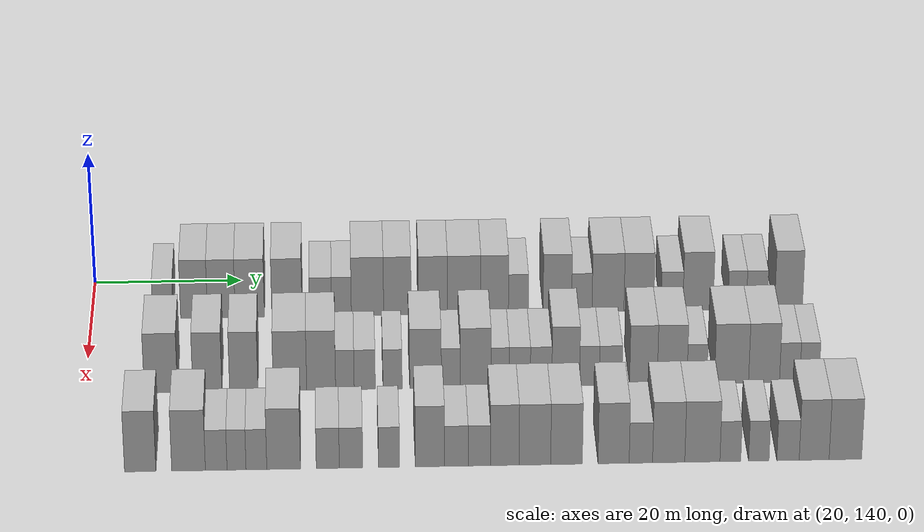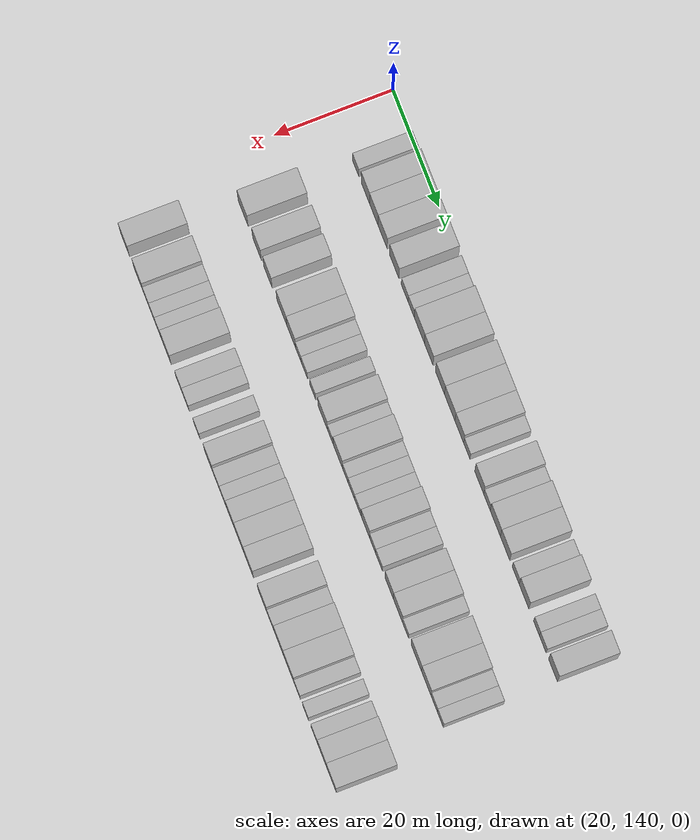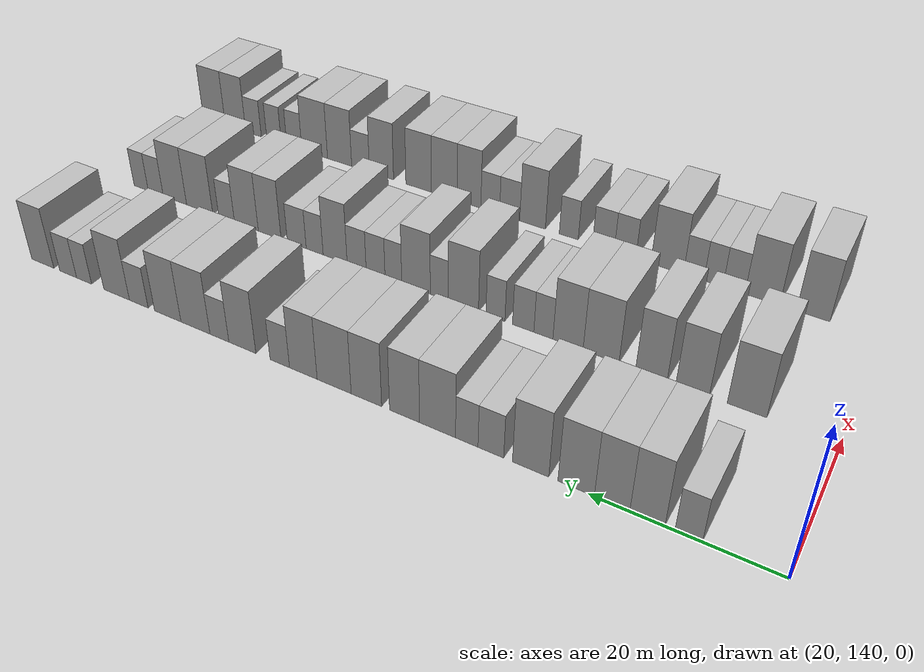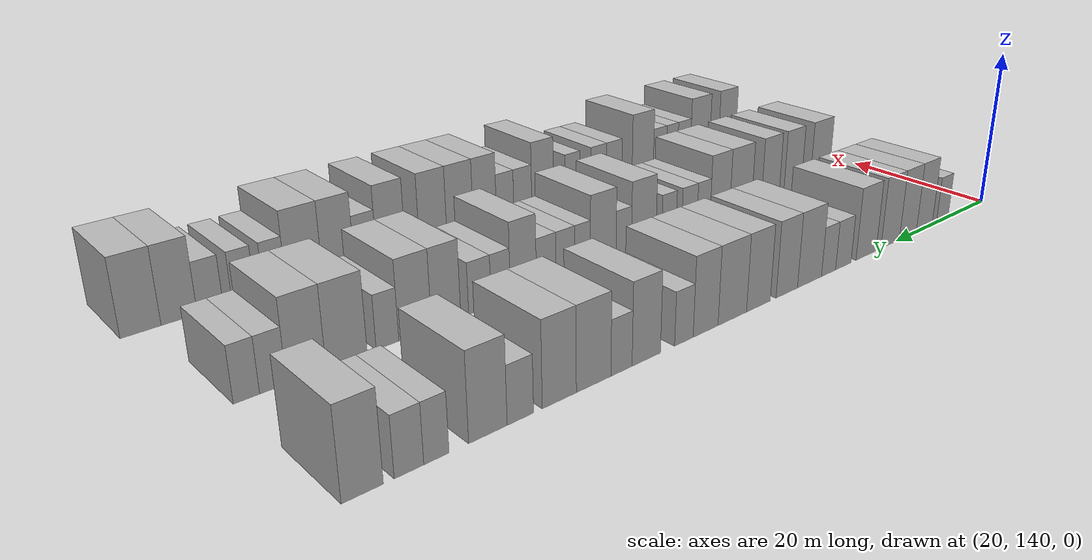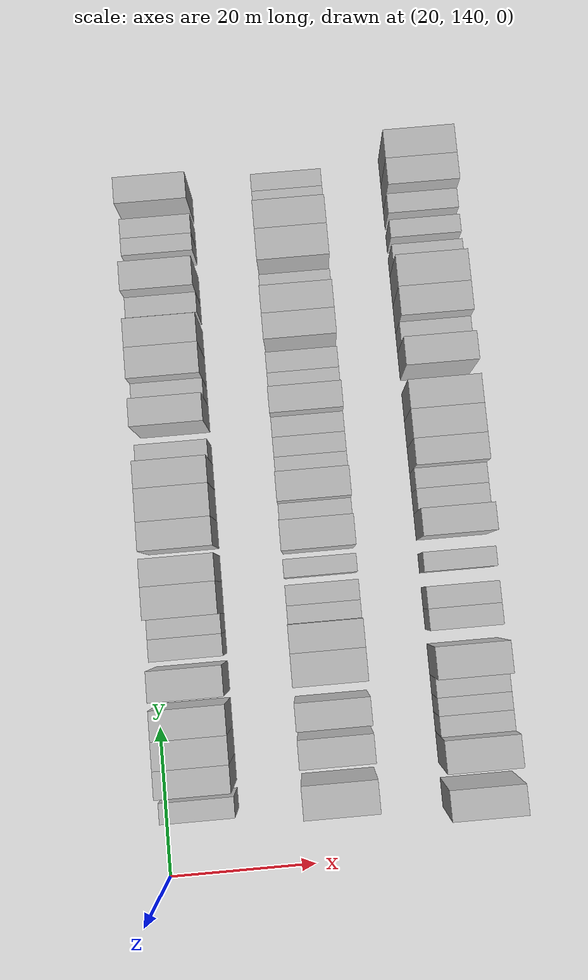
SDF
<sdf version="1.6">
 <world name="default">
  <model name="building_97">
   <static>1</static>
   <pose>25.0000 149.6220 0 0.000000 0.000000 0.000000</pose>
   <link name="link">
    <pose>0 0 3.00 0 0 0</pose>
    <collision name="collision"><geometry><box><size>10.0000 2.7482 6.0000</size></box></geometry></collision>
    <visual name="visual">
     <cast_shadows>0</cast_shadows>
     <geometry><box><size>10.0000 2.7482 6.0000</size></box></geometry>
     <material>
      <script>
       <uri>model://HANNAS_wall/materials/scripts</uri>
       <uri>model://HANNAS_wall/materials/textures</uri>
       <name>vrc/HANNAS_wall</name>
      </script>
     </material>
    </visual>
   </link>
  </model>
  <model name="building_98">
   <static>1</static>
   <pose>25.0000 153.8013 0 0.000000 0.000000 0.000000</pose>
   <link name="link">
    <pose>0 0 4.50 0 0 0</pose>
    <collision name="collision"><geometry><box><size>10.0000 3.6104 9.0000</size></box></geometry></collision>
    <visual name="visual">
     <cast_shadows>0</cast_shadows>
     <geometry><box><size>10.0000 3.6104 9.0000</size></box></geometry>
     <material>
      <script>
       <uri>model://HANNAS_wall/materials/scripts</uri>
       <uri>model://HANNAS_wall/materials/textures</uri>
       <name>vrc/HANNAS_wall</name>
      </script>
     </material>
    </visual>
   </link>
  </model>
  <model name="building_99">
   <static>1</static>
   <pose>25.0000 157.4761 0 0.000000 0.000000 0.000000</pose>
   <link name="link">
    <pose>0 0 4.50 0 0 0</pose>
    <collision name="collision"><geometry><box><size>10.0000 3.7392 9.0000</size></box></geometry></collision>
    <visual name="visual">
     <cast_shadows>0</cast_shadows>
     <geometry><box><size>10.0000 3.7392 9.0000</size></box></geometry>
     <material>
      <script>
       <uri>model://HANNAS_wall/materials/scripts</uri>
       <uri>model://HANNAS_wall/materials/textures</uri>
       <name>vrc/HANNAS_wall</name>
      </script>
     </material>
    </visual>
   </link>
  </model>
  <model name="building_100">
   <static>1</static>
   <pose>25.0000 161.3180 0 0.000000 0.000000 0.000000</pose>
   <link name="link">
    <pose>0 0 4.50 0 0 0</pose>
    <collision name="collision"><geometry><box><size>10.0000 3.9446 9.0000</size></box></geometry></collision>
    <visual name="visual">
     <cast_shadows>0</cast_shadows>
     <geometry><box><size>10.0000 3.9446 9.0000</size></box></geometry>
     <material>
      <script>
       <uri>model://HANNAS_wall/materials/scripts</uri>
       <uri>model://HANNAS_wall/materials/textures</uri>
       <name>vrc/HANNAS_wall</name>
      </script>
     </material>
    </visual>
   </link>
  </model>
  <model name="building_101">
   <static>1</static>
   <pose>25.0000 166.3314 0 0.000000 0.000000 0.000000</pose>
   <link name="link">
    <pose>0 0 4.50 0 0 0</pose>
    <collision name="collision"><geometry><box><size>10.0000 4.0823 9.0000</size></box></geometry></collision>
    <visual name="visual">
     <cast_shadows>0</cast_shadows>
     <geometry><box><size>10.0000 4.0823 9.0000</size></box></geometry>
     <material>
      <script>
       <uri>model://HANNAS_wall/materials/scripts</uri>
       <uri>model://HANNAS_wall/materials/textures</uri>
       <name>vrc/HANNAS_wall</name>
      </script>
     </material>
    </visual>
   </link>
  </model>
  <model name="building_102">
   <static>1</static>
   <pose>25.0000 170.8628 0 0.000000 0.000000 0.000000</pose>
   <link name="link">
    <pose>0 0 3.00 0 0 0</pose>
    <collision name="collision"><geometry><box><size>10.0000 2.9804 6.0000</size></box></geometry></collision>
    <visual name="visual">
     <cast_shadows>0</cast_shadows>
     <geometry><box><size>10.0000 2.9804 6.0000</size></box></geometry>
     <material>
      <script>
       <uri>model://HANNAS_wall/materials/scripts</uri>
       <uri>model://HANNAS_wall/materials/textures</uri>
       <name>vrc/HANNAS_wall</name>
      </script>
     </material>
    </visual>
   </link>
  </model>
  <model name="building_103">
   <static>1</static>
   <pose>25.0000 173.6790 0 0.000000 0.000000 0.000000</pose>
   <link name="link">
    <pose>0 0 3.00 0 0 0</pose>
    <collision name="collision"><geometry><box><size>10.0000 2.6522 6.0000</size></box></geometry></collision>
    <visual name="visual">
     <cast_shadows>0</cast_shadows>
     <geometry><box><size>10.0000 2.6522 6.0000</size></box></geometry>
     <material>
      <script>
       <uri>model://HANNAS_wall/materials/scripts</uri>
       <uri>model://HANNAS_wall/materials/textures</uri>
       <name>vrc/HANNAS_wall</name>
      </script>
     </material>
    </visual>
   </link>
  </model>
  <model name="building_104">
   <static>1</static>
   <pose>25.0000 177.1839 0 0.000000 0.000000 0.000000</pose>
   <link name="link">
    <pose>0 0 4.50 0 0 0</pose>
    <collision name="collision"><geometry><box><size>10.0000 4.3577 9.0000</size></box></geometry></collision>
    <visual name="visual">
     <cast_shadows>0</cast_shadows>
     <geometry><box><size>10.0000 4.3577 9.0000</size></box></geometry>
     <material>
      <script>
       <uri>model://HANNAS_wall/materials/scripts</uri>
       <uri>model://HANNAS_wall/materials/textures</uri>
       <name>vrc/HANNAS_wall</name>
      </script>
     </material>
    </visual>
   </link>
  </model>
  <model name="building_105">
   <static>1</static>
   <pose>25.0000 181.2200 0 0.000000 0.000000 0.000000</pose>
   <link name="link">
    <pose>0 0 4.50 0 0 0</pose>
    <collision name="collision"><geometry><box><size>10.0000 3.7145 9.0000</size></box></geometry></collision>
    <visual name="visual">
     <cast_shadows>0</cast_shadows>
     <geometry><box><size>10.0000 3.7145 9.0000</size></box></geometry>
     <material>
      <script>
       <uri>model://HANNAS_wall/materials/scripts</uri>
       <uri>model://HANNAS_wall/materials/textures</uri>
       <name>vrc/HANNAS_wall</name>
      </script>
     </material>
    </visual>
   </link>
  </model>
  <model name="building_106">
   <static>1</static>
   <pose>25.0000 186.0313 0 0.000000 0.000000 0.000000</pose>
   <link name="link">
    <pose>0 0 4.50 0 0 0</pose>
    <collision name="collision"><geometry><box><size>10.0000 3.9080 9.0000</size></box></geometry></collision>
    <visual name="visual">
     <cast_shadows>0</cast_shadows>
     <geometry><box><size>10.0000 3.9080 9.0000</size></box></geometry>
     <material>
      <script>
       <uri>model://HANNAS_wall/materials/scripts</uri>
       <uri>model://HANNAS_wall/materials/textures</uri>
       <name>vrc/HANNAS_wall</name>
      </script>
     </material>
    </visual>
   </link>
  </model>
  <model name="building_107">
   <static>1</static>
   <pose>25.0000 190.2324 0 0.000000 0.000000 0.000000</pose>
   <link name="link">
    <pose>0 0 4.50 0 0 0</pose>
    <collision name="collision"><geometry><box><size>10.0000 4.4941 9.0000</size></box></geometry></collision>
    <visual name="visual">
     <cast_shadows>0</cast_shadows>
     <geometry><box><size>10.0000 4.4941 9.0000</size></box></geometry>
     <material>
      <script>
       <uri>model://HANNAS_wall/materials/scripts</uri>
       <uri>model://HANNAS_wall/materials/textures</uri>
       <name>vrc/HANNAS_wall</name>
      </script>
     </material>
    </visual>
   </link>
  </model>
  <model name="building_108">
   <static>1</static>
   <pose>25.0000 194.3490 0 0.000000 0.000000 0.000000</pose>
   <link name="link">
    <pose>0 0 4.50 0 0 0</pose>
    <collision name="collision"><geometry><box><size>10.0000 3.7392 9.0000</size></box></geometry></collision>
    <visual name="visual">
     <cast_shadows>0</cast_shadows>
     <geometry><box><size>10.0000 3.7392 9.0000</size></box></geometry>
     <material>
      <script>
       <uri>model://HANNAS_wall/materials/scripts</uri>
       <uri>model://HANNAS_wall/materials/textures</uri>
       <name>vrc/HANNAS_wall</name>
      </script>
     </material>
    </visual>
   </link>
  </model>
  <model name="building_109">
   <static>1</static>
   <pose>25.0000 197.5638 0 0.000000 0.000000 0.000000</pose>
   <link name="link">
    <pose>0 0 3.00 0 0 0</pose>
    <collision name="collision"><geometry><box><size>10.0000 2.6904 6.0000</size></box></geometry></collision>
    <visual name="visual">
     <cast_shadows>0</cast_shadows>
     <geometry><box><size>10.0000 2.6904 6.0000</size></box></geometry>
     <material>
      <script>
       <uri>model://HANNAS_wall/materials/scripts</uri>
       <uri>model://HANNAS_wall/materials/textures</uri>
       <name>vrc/HANNAS_wall</name>
      </script>
     </material>
    </visual>
   </link>
  </model>
  <model name="building_110">
   <static>1</static>
   <pose>25.0000 202.8385 0 0.000000 0.000000 0.000000</pose>
   <link name="link">
    <pose>0 0 4.50 0 0 0</pose>
    <collision name="collision"><geometry><box><size>10.0000 3.8591 9.0000</size></box></geometry></collision>
    <visual name="visual">
     <cast_shadows>0</cast_shadows>
     <geometry><box><size>10.0000 3.8591 9.0000</size></box></geometry>
     <material>
      <script>
       <uri>model://HANNAS_wall/materials/scripts</uri>
       <uri>model://HANNAS_wall/materials/textures</uri>
       <name>vrc/HANNAS_wall</name>
      </script>
     </material>
    </visual>
   </link>
  </model>
  <model name="building_111">
   <static>1</static>
   <pose>25.0000 206.1472 0 0.000000 0.000000 0.000000</pose>
   <link name="link">
    <pose>0 0 3.00 0 0 0</pose>
    <collision name="collision"><geometry><box><size>10.0000 2.7583 6.0000</size></box></geometry></collision>
    <visual name="visual">
     <cast_shadows>0</cast_shadows>
     <geometry><box><size>10.0000 2.7583 6.0000</size></box></geometry>
     <material>
      <script>
       <uri>model://HANNAS_wall/materials/scripts</uri>
       <uri>model://HANNAS_wall/materials/textures</uri>
       <name>vrc/HANNAS_wall</name>
      </script>
     </material>
    </visual>
   </link>
  </model>
  <model name="building_112">
   <static>1</static>
   <pose>25.0000 209.6910 0 0.000000 0.000000 0.000000</pose>
   <link name="link">
    <pose>0 0 4.50 0 0 0</pose>
    <collision name="collision"><geometry><box><size>10.0000 4.3291 9.0000</size></box></geometry></collision>
    <visual name="visual">
     <cast_shadows>0</cast_shadows>
     <geometry><box><size>10.0000 4.3291 9.0000</size></box></geometry>
     <material>
      <script>
       <uri>model://HANNAS_wall/materials/scripts</uri>
       <uri>model://HANNAS_wall/materials/textures</uri>
       <name>vrc/HANNAS_wall</name>
      </script>
     </material>
    </visual>
   </link>
  </model>
  <model name="building_113">
   <static>1</static>
   <pose>25.0000 213.8749 0 0.000000 0.000000 0.000000</pose>
   <link name="link">
    <pose>0 0 4.50 0 0 0</pose>
    <collision name="collision"><geometry><box><size>10.0000 4.0388 9.0000</size></box></geometry></collision>
    <visual name="visual">
     <cast_shadows>0</cast_shadows>
     <geometry><box><size>10.0000 4.0388 9.0000</size></box></geometry>
     <material>
      <script>
       <uri>model://HANNAS_wall/materials/scripts</uri>
       <uri>model://HANNAS_wall/materials/textures</uri>
       <name>vrc/HANNAS_wall</name>
      </script>
     </material>
    </visual>
   </link>
  </model>
  <model name="building_114">
   <static>1</static>
   <pose>25.0000 218.3650 0 0.000000 0.000000 0.000000</pose>
   <link name="link">
    <pose>0 0 3.00 0 0 0</pose>
    <collision name="collision"><geometry><box><size>10.0000 2.9414 6.0000</size></box></geometry></collision>
    <visual name="visual">
     <cast_shadows>0</cast_shadows>
     <geometry><box><size>10.0000 2.9414 6.0000</size></box></geometry>
     <material>
      <script>
       <uri>model://HANNAS_wall/materials/scripts</uri>
       <uri>model://HANNAS_wall/materials/textures</uri>
       <name>vrc/HANNAS_wall</name>
      </script>
     </material>
    </visual>
   </link>
  </model>
  <model name="building_115">
   <static>1</static>
   <pose>25.0000 221.8903 0 0.000000 0.000000 0.000000</pose>
   <link name="link">
    <pose>0 0 4.50 0 0 0</pose>
    <collision name="collision"><geometry><box><size>10.0000 4.1090 9.0000</size></box></geometry></collision>
    <visual name="visual">
     <cast_shadows>0</cast_shadows>
     <geometry><box><size>10.0000 4.1090 9.0000</size></box></geometry>
     <material>
      <script>
       <uri>model://HANNAS_wall/materials/scripts</uri>
       <uri>model://HANNAS_wall/materials/textures</uri>
       <name>vrc/HANNAS_wall</name>
      </script>
     </material>
    </visual>
   </link>
  </model>
  <model name="building_116">
   <static>1</static>
   <pose>25.0000 227.1944 0 0.000000 0.000000 0.000000</pose>
   <link name="link">
    <pose>0 0 3.00 0 0 0</pose>
    <collision name="collision"><geometry><box><size>10.0000 2.4991 6.0000</size></box></geometry></collision>
    <visual name="visual">
     <cast_shadows>0</cast_shadows>
     <geometry><box><size>10.0000 2.4991 6.0000</size></box></geometry>
     <material>
      <script>
       <uri>model://HANNAS_wall/materials/scripts</uri>
       <uri>model://HANNAS_wall/materials/textures</uri>
       <name>vrc/HANNAS_wall</name>
      </script>
     </material>
    </visual>
   </link>
  </model>
  <model name="building_117">
   <static>1</static>
   <pose>25.0000 229.8580 0 0.000000 0.000000 0.000000</pose>
   <link name="link">
    <pose>0 0 3.00 0 0 0</pose>
    <collision name="collision"><geometry><box><size>10.0000 2.8282 6.0000</size></box></geometry></collision>
    <visual name="visual">
     <cast_shadows>0</cast_shadows>
     <geometry><box><size>10.0000 2.8282 6.0000</size></box></geometry>
     <material>
      <script>
       <uri>model://HANNAS_wall/materials/scripts</uri>
       <uri>model://HANNAS_wall/materials/textures</uri>
       <name>vrc/HANNAS_wall</name>
      </script>
     </material>
    </visual>
   </link>
  </model>
  <model name="building_118">
   <static>1</static>
   <pose>25.0000 234.1640 0 0.000000 0.000000 0.000000</pose>
   <link name="link">
    <pose>0 0 4.50 0 0 0</pose>
    <collision name="collision"><geometry><box><size>10.0000 3.7837 9.0000</size></box></geometry></collision>
    <visual name="visual">
     <cast_shadows>0</cast_shadows>
     <geometry><box><size>10.0000 3.7837 9.0000</size></box></geometry>
     <material>
      <script>
       <uri>model://HANNAS_wall/materials/scripts</uri>
       <uri>model://HANNAS_wall/materials/textures</uri>
       <name>vrc/HANNAS_wall</name>
      </script>
     </material>
    </visual>
   </link>
  </model>
  <model name="building_201">
   <static>1</static>
   <pose>44.0000 149.9380 0 0.000000 0.000000 0.000000</pose>
   <link name="link">
    <pose>0 0 4.50 0 0 0</pose>
    <collision name="collision"><geometry><box><size>10.0000 4.3450 9.0000</size></box></geometry></collision>
    <visual name="visual">
     <cast_shadows>0</cast_shadows>
     <geometry><box><size>10.0000 4.3450 9.0000</size></box></geometry>
     <material>
      <script>
       <uri>model://HANNAS_wall/materials/scripts</uri>
       <uri>model://HANNAS_wall/materials/textures</uri>
       <name>vrc/HANNAS_wall</name>
      </script>
     </material>
    </visual>
   </link>
  </model>
  <model name="building_202">
   <static>1</static>
   <pose>44.0000 156.0164 0 0.000000 0.000000 0.000000</pose>
   <link name="link">
    <pose>0 0 4.50 0 0 0</pose>
    <collision name="collision"><geometry><box><size>10.0000 3.8118 9.0000</size></box></geometry></collision>
    <visual name="visual">
     <cast_shadows>0</cast_shadows>
     <geometry><box><size>10.0000 3.8118 9.0000</size></box></geometry>
     <material>
      <script>
       <uri>model://HANNAS_wall/materials/scripts</uri>
       <uri>model://HANNAS_wall/materials/textures</uri>
       <name>vrc/HANNAS_wall</name>
      </script>
     </material>
    </visual>
   </link>
  </model>
  <model name="building_203">
   <static>1</static>
   <pose>44.0000 160.7750 0 0.000000 0.000000 0.000000</pose>
   <link name="link">
    <pose>0 0 4.50 0 0 0</pose>
    <collision name="collision"><geometry><box><size>10.0000 3.7052 9.0000</size></box></geometry></collision>
    <visual name="visual">
     <cast_shadows>0</cast_shadows>
     <geometry><box><size>10.0000 3.7052 9.0000</size></box></geometry>
     <material>
      <script>
       <uri>model://HANNAS_wall/materials/scripts</uri>
       <uri>model://HANNAS_wall/materials/textures</uri>
       <name>vrc/HANNAS_wall</name>
      </script>
     </material>
    </visual>
   </link>
  </model>
  <model name="building_204">
   <static>1</static>
   <pose>44.0000 166.8177 0 0.000000 0.000000 0.000000</pose>
   <link name="link">
    <pose>0 0 4.50 0 0 0</pose>
    <collision name="collision"><geometry><box><size>10.0000 4.3803 9.0000</size></box></geometry></collision>
    <visual name="visual">
     <cast_shadows>0</cast_shadows>
     <geometry><box><size>10.0000 4.3803 9.0000</size></box></geometry>
     <material>
      <script>
       <uri>model://HANNAS_wall/materials/scripts</uri>
       <uri>model://HANNAS_wall/materials/textures</uri>
       <name>vrc/HANNAS_wall</name>
      </script>
     </material>
    </visual>
   </link>
  </model>
  <model name="building_205">
   <static>1</static>
   <pose>44.0000 170.8969 0 0.000000 0.000000 0.000000</pose>
   <link name="link">
    <pose>0 0 4.50 0 0 0</pose>
    <collision name="collision"><geometry><box><size>10.0000 3.7780 9.0000</size></box></geometry></collision>
    <visual name="visual">
     <cast_shadows>0</cast_shadows>
     <geometry><box><size>10.0000 3.7780 9.0000</size></box></geometry>
     <material>
      <script>
       <uri>model://HANNAS_wall/materials/scripts</uri>
       <uri>model://HANNAS_wall/materials/textures</uri>
       <name>vrc/HANNAS_wall</name>
      </script>
     </material>
    </visual>
   </link>
  </model>
  <model name="building_206">
   <static>1</static>
   <pose>44.0000 174.0030 0 0.000000 0.000000 0.000000</pose>
   <link name="link">
    <pose>0 0 3.00 0 0 0</pose>
    <collision name="collision"><geometry><box><size>10.0000 2.4343 6.0000</size></box></geometry></collision>
    <visual name="visual">
     <cast_shadows>0</cast_shadows>
     <geometry><box><size>10.0000 2.4343 6.0000</size></box></geometry>
     <material>
      <script>
       <uri>model://HANNAS_wall/materials/scripts</uri>
       <uri>model://HANNAS_wall/materials/textures</uri>
       <name>vrc/HANNAS_wall</name>
      </script>
     </material>
    </visual>
   </link>
  </model>
  <model name="building_207">
   <static>1</static>
   <pose>44.0000 176.6061 0 0.000000 0.000000 0.000000</pose>
   <link name="link">
    <pose>0 0 3.00 0 0 0</pose>
    <collision name="collision"><geometry><box><size>10.0000 2.7717 6.0000</size></box></geometry></collision>
    <visual name="visual">
     <cast_shadows>0</cast_shadows>
     <geometry><box><size>10.0000 2.7717 6.0000</size></box></geometry>
     <material>
      <script>
       <uri>model://HANNAS_wall/materials/scripts</uri>
       <uri>model://HANNAS_wall/materials/textures</uri>
       <name>vrc/HANNAS_wall</name>
      </script>
     </material>
    </visual>
   </link>
  </model>
  <model name="building_208">
   <static>1</static>
   <pose>44.0000 180.2490 0 0.000000 0.000000 0.000000</pose>
   <link name="link">
    <pose>0 0 3.00 0 0 0</pose>
    <collision name="collision"><geometry><box><size>10.0000 2.5141 6.0000</size></box></geometry></collision>
    <visual name="visual">
     <cast_shadows>0</cast_shadows>
     <geometry><box><size>10.0000 2.5141 6.0000</size></box></geometry>
     <material>
      <script>
       <uri>model://HANNAS_wall/materials/scripts</uri>
       <uri>model://HANNAS_wall/materials/textures</uri>
       <name>vrc/HANNAS_wall</name>
      </script>
     </material>
    </visual>
   </link>
  </model>
  <model name="building_209">
   <static>1</static>
   <pose>44.0000 184.5725 0 0.000000 0.000000 0.000000</pose>
   <link name="link">
    <pose>0 0 4.50 0 0 0</pose>
    <collision name="collision"><geometry><box><size>10.0000 4.1328 9.0000</size></box></geometry></collision>
    <visual name="visual">
     <cast_shadows>0</cast_shadows>
     <geometry><box><size>10.0000 4.1328 9.0000</size></box></geometry>
     <material>
      <script>
       <uri>model://HANNAS_wall/materials/scripts</uri>
       <uri>model://HANNAS_wall/materials/textures</uri>
       <name>vrc/HANNAS_wall</name>
      </script>
     </material>
    </visual>
   </link>
  </model>
  <model name="building_210">
   <static>1</static>
   <pose>44.0000 187.8779 0 0.000000 0.000000 0.000000</pose>
   <link name="link">
    <pose>0 0 3.00 0 0 0</pose>
    <collision name="collision"><geometry><box><size>10.0000 2.4780 6.0000</size></box></geometry></collision>
    <visual name="visual">
     <cast_shadows>0</cast_shadows>
     <geometry><box><size>10.0000 2.4780 6.0000</size></box></geometry>
     <material>
      <script>
       <uri>model://HANNAS_wall/materials/scripts</uri>
       <uri>model://HANNAS_wall/materials/textures</uri>
       <name>vrc/HANNAS_wall</name>
      </script>
     </material>
    </visual>
   </link>
  </model>
  <model name="building_211">
   <static>1</static>
   <pose>44.0000 191.1348 0 0.000000 0.000000 0.000000</pose>
   <link name="link">
    <pose>0 0 4.50 0 0 0</pose>
    <collision name="collision"><geometry><box><size>10.0000 4.0360 9.0000</size></box></geometry></collision>
    <visual name="visual">
     <cast_shadows>0</cast_shadows>
     <geometry><box><size>10.0000 4.0360 9.0000</size></box></geometry>
     <material>
      <script>
       <uri>model://HANNAS_wall/materials/scripts</uri>
       <uri>model://HANNAS_wall/materials/textures</uri>
       <name>vrc/HANNAS_wall</name>
      </script>
     </material>
    </visual>
   </link>
  </model>
  <model name="building_212">
   <static>1</static>
   <pose>44.0000 194.3546 0 0.000000 0.000000 0.000000</pose>
   <link name="link">
    <pose>0 0 3.00 0 0 0</pose>
    <collision name="collision"><geometry><box><size>10.0000 2.4036 6.0000</size></box></geometry></collision>
    <visual name="visual">
     <cast_shadows>0</cast_shadows>
     <geometry><box><size>10.0000 2.4036 6.0000</size></box></geometry>
     <material>
      <script>
       <uri>model://HANNAS_wall/materials/scripts</uri>
       <uri>model://HANNAS_wall/materials/textures</uri>
       <name>vrc/HANNAS_wall</name>
      </script>
     </material>
    </visual>
   </link>
  </model>
  <model name="building_213">
   <static>1</static>
   <pose>44.0000 196.9382 0 0.000000 0.000000 0.000000</pose>
   <link name="link">
    <pose>0 0 3.00 0 0 0</pose>
    <collision name="collision"><geometry><box><size>10.0000 2.7635 6.0000</size></box></geometry></collision>
    <visual name="visual">
     <cast_shadows>0</cast_shadows>
     <geometry><box><size>10.0000 2.7635 6.0000</size></box></geometry>
     <material>
      <script>
       <uri>model://HANNAS_wall/materials/scripts</uri>
       <uri>model://HANNAS_wall/materials/textures</uri>
       <name>vrc/HANNAS_wall</name>
      </script>
     </material>
    </visual>
   </link>
  </model>
  <model name="building_214">
   <static>1</static>
   <pose>44.0000 199.7329 0 0.000000 0.000000 0.000000</pose>
   <link name="link">
    <pose>0 0 3.00 0 0 0</pose>
    <collision name="collision"><geometry><box><size>10.0000 2.8259 6.0000</size></box></geometry></collision>
    <visual name="visual">
     <cast_shadows>0</cast_shadows>
     <geometry><box><size>10.0000 2.8259 6.0000</size></box></geometry>
     <material>
      <script>
       <uri>model://HANNAS_wall/materials/scripts</uri>
       <uri>model://HANNAS_wall/materials/textures</uri>
       <name>vrc/HANNAS_wall</name>
      </script>
     </material>
    </visual>
   </link>
  </model>
  <model name="building_215">
   <static>1</static>
   <pose>44.0000 202.9664 0 0.000000 0.000000 0.000000</pose>
   <link name="link">
    <pose>0 0 4.50 0 0 0</pose>
    <collision name="collision"><geometry><box><size>10.0000 3.6409 9.0000</size></box></geometry></collision>
    <visual name="visual">
     <cast_shadows>0</cast_shadows>
     <geometry><box><size>10.0000 3.6409 9.0000</size></box></geometry>
     <material>
      <script>
       <uri>model://HANNAS_wall/materials/scripts</uri>
       <uri>model://HANNAS_wall/materials/textures</uri>
       <name>vrc/HANNAS_wall</name>
      </script>
     </material>
    </visual>
   </link>
  </model>
  <model name="building_216">
   <static>1</static>
   <pose>44.0000 206.0918 0 0.000000 0.000000 0.000000</pose>
   <link name="link">
    <pose>0 0 3.00 0 0 0</pose>
    <collision name="collision"><geometry><box><size>10.0000 2.6099 6.0000</size></box></geometry></collision>
    <visual name="visual">
     <cast_shadows>0</cast_shadows>
     <geometry><box><size>10.0000 2.6099 6.0000</size></box></geometry>
     <material>
      <script>
       <uri>model://HANNAS_wall/materials/scripts</uri>
       <uri>model://HANNAS_wall/materials/textures</uri>
       <name>vrc/HANNAS_wall</name>
      </script>
     </material>
    </visual>
   </link>
  </model>
  <model name="building_217">
   <static>1</static>
   <pose>44.0000 208.8709 0 0.000000 0.000000 0.000000</pose>
   <link name="link">
    <pose>0 0 3.00 0 0 0</pose>
    <collision name="collision"><geometry><box><size>10.0000 2.9484 6.0000</size></box></geometry></collision>
    <visual name="visual">
     <cast_shadows>0</cast_shadows>
     <geometry><box><size>10.0000 2.9484 6.0000</size></box></geometry>
     <material>
      <script>
       <uri>model://HANNAS_wall/materials/scripts</uri>
       <uri>model://HANNAS_wall/materials/textures</uri>
       <name>vrc/HANNAS_wall</name>
      </script>
     </material>
    </visual>
   </link>
  </model>
  <model name="building_218">
   <static>1</static>
   <pose>44.0000 213.1676 0 0.000000 0.000000 0.000000</pose>
   <link name="link">
    <pose>0 0 4.50 0 0 0</pose>
    <collision name="collision"><geometry><box><size>10.0000 3.6450 9.0000</size></box></geometry></collision>
    <visual name="visual">
     <cast_shadows>0</cast_shadows>
     <geometry><box><size>10.0000 3.6450 9.0000</size></box></geometry>
     <material>
      <script>
       <uri>model://HANNAS_wall/materials/scripts</uri>
       <uri>model://HANNAS_wall/materials/textures</uri>
       <name>vrc/HANNAS_wall</name>
      </script>
     </material>
    </visual>
   </link>
  </model>
  <model name="building_219">
   <static>1</static>
   <pose>44.0000 216.9467 0 0.000000 0.000000 0.000000</pose>
   <link name="link">
    <pose>0 0 4.50 0 0 0</pose>
    <collision name="collision"><geometry><box><size>10.0000 3.9133 9.0000</size></box></geometry></collision>
    <visual name="visual">
     <cast_shadows>0</cast_shadows>
     <geometry><box><size>10.0000 3.9133 9.0000</size></box></geometry>
     <material>
      <script>
       <uri>model://HANNAS_wall/materials/scripts</uri>
       <uri>model://HANNAS_wall/materials/textures</uri>
       <name>vrc/HANNAS_wall</name>
      </script>
     </material>
    </visual>
   </link>
  </model>
  <model name="building_220">
   <static>1</static>
   <pose>44.0000 220.2112 0 0.000000 0.000000 0.000000</pose>
   <link name="link">
    <pose>0 0 3.00 0 0 0</pose>
    <collision name="collision"><geometry><box><size>10.0000 2.6156 6.0000</size></box></geometry></collision>
    <visual name="visual">
     <cast_shadows>0</cast_shadows>
     <geometry><box><size>10.0000 2.6156 6.0000</size></box></geometry>
     <material>
      <script>
       <uri>model://HANNAS_wall/materials/scripts</uri>
       <uri>model://HANNAS_wall/materials/textures</uri>
       <name>vrc/HANNAS_wall</name>
      </script>
     </material>
    </visual>
   </link>
  </model>
  <model name="building_221">
   <static>1</static>
   <pose>44.0000 224.7614 0 0.000000 0.000000 0.000000</pose>
   <link name="link">
    <pose>0 0 4.50 0 0 0</pose>
    <collision name="collision"><geometry><box><size>10.0000 4.4846 9.0000</size></box></geometry></collision>
    <visual name="visual">
     <cast_shadows>0</cast_shadows>
     <geometry><box><size>10.0000 4.4846 9.0000</size></box></geometry>
     <material>
      <script>
       <uri>model://HANNAS_wall/materials/scripts</uri>
       <uri>model://HANNAS_wall/materials/textures</uri>
       <name>vrc/HANNAS_wall</name>
      </script>
     </material>
    </visual>
   </link>
  </model>
  <model name="building_222">
   <static>1</static>
   <pose>44.0000 229.0437 0 0.000000 0.000000 0.000000</pose>
   <link name="link">
    <pose>0 0 4.50 0 0 0</pose>
    <collision name="collision"><geometry><box><size>10.0000 4.0801 9.0000</size></box></geometry></collision>
    <visual name="visual">
     <cast_shadows>0</cast_shadows>
     <geometry><box><size>10.0000 4.0801 9.0000</size></box></geometry>
     <material>
      <script>
       <uri>model://HANNAS_wall/materials/scripts</uri>
       <uri>model://HANNAS_wall/materials/textures</uri>
       <name>vrc/HANNAS_wall</name>
      </script>
     </material>
    </visual>
   </link>
  </model>
  <model name="building_223">
   <static>1</static>
   <pose>44.0000 232.4243 0 0.000000 0.000000 0.000000</pose>
   <link name="link">
    <pose>0 0 3.00 0 0 0</pose>
    <collision name="collision"><geometry><box><size>10.0000 2.6811 6.0000</size></box></geometry></collision>
    <visual name="visual">
     <cast_shadows>0</cast_shadows>
     <geometry><box><size>10.0000 2.6811 6.0000</size></box></geometry>
     <material>
      <script>
       <uri>model://HANNAS_wall/materials/scripts</uri>
       <uri>model://HANNAS_wall/materials/textures</uri>
       <name>vrc/HANNAS_wall</name>
      </script>
     </material>
    </visual>
   </link>
  </model>
  <model name="building_224">
   <static>1</static>
   <pose>44.0000 235.0298 0 0.000000 0.000000 0.000000</pose>
   <link name="link">
    <pose>0 0 3.00 0 0 0</pose>
    <collision name="collision"><geometry><box><size>10.0000 2.5299 6.0000</size></box></geometry></collision>
    <visual name="visual">
     <cast_shadows>0</cast_shadows>
     <geometry><box><size>10.0000 2.5299 6.0000</size></box></geometry>
     <material>
      <script>
       <uri>model://HANNAS_wall/materials/scripts</uri>
       <uri>model://HANNAS_wall/materials/textures</uri>
       <name>vrc/HANNAS_wall</name>
      </script>
     </material>
    </visual>
   </link>
  </model>
  <model name="building_325">
   <static>1</static>
   <pose>63.0000 147.9196 0 0.000000 0.000000 0.000000</pose>
   <link name="link">
    <pose>0 0 4.50 0 0 0</pose>
    <collision name="collision"><geometry><box><size>10.0000 3.9727 9.0000</size></box></geometry></collision>
    <visual name="visual">
     <cast_shadows>0</cast_shadows>
     <geometry><box><size>10.0000 3.9727 9.0000</size></box></geometry>
     <material>
      <script>
       <uri>model://HANNAS_wall/materials/scripts</uri>
       <uri>model://HANNAS_wall/materials/textures</uri>
       <name>vrc/HANNAS_wall</name>
      </script>
     </material>
    </visual>
   </link>
  </model>
  <model name="building_326">
   <static>1</static>
   <pose>63.0000 154.0412 0 0.000000 0.000000 0.000000</pose>
   <link name="link">
    <pose>0 0 4.50 0 0 0</pose>
    <collision name="collision"><geometry><box><size>10.0000 4.2704 9.0000</size></box></geometry></collision>
    <visual name="visual">
     <cast_shadows>0</cast_shadows>
     <geometry><box><size>10.0000 4.2704 9.0000</size></box></geometry>
     <material>
      <script>
       <uri>model://HANNAS_wall/materials/scripts</uri>
       <uri>model://HANNAS_wall/materials/textures</uri>
       <name>vrc/HANNAS_wall</name>
      </script>
     </material>
    </visual>
   </link>
  </model>
  <model name="building_327">
   <static>1</static>
   <pose>63.0000 157.5472 0 0.000000 0.000000 0.000000</pose>
   <link name="link">
    <pose>0 0 3.00 0 0 0</pose>
    <collision name="collision"><geometry><box><size>10.0000 2.7415 6.0000</size></box></geometry></collision>
    <visual name="visual">
     <cast_shadows>0</cast_shadows>
     <geometry><box><size>10.0000 2.7415 6.0000</size></box></geometry>
     <material>
      <script>
       <uri>model://HANNAS_wall/materials/scripts</uri>
       <uri>model://HANNAS_wall/materials/textures</uri>
       <name>vrc/HANNAS_wall</name>
      </script>
     </material>
    </visual>
   </link>
  </model>
  <model name="building_328">
   <static>1</static>
   <pose>63.0000 160.1218 0 0.000000 0.000000 0.000000</pose>
   <link name="link">
    <pose>0 0 3.00 0 0 0</pose>
    <collision name="collision"><geometry><box><size>10.0000 2.4078 6.0000</size></box></geometry></collision>
    <visual name="visual">
     <cast_shadows>0</cast_shadows>
     <geometry><box><size>10.0000 2.4078 6.0000</size></box></geometry>
     <material>
      <script>
       <uri>model://HANNAS_wall/materials/scripts</uri>
       <uri>model://HANNAS_wall/materials/textures</uri>
       <name>vrc/HANNAS_wall</name>
      </script>
     </material>
    </visual>
   </link>
  </model>
  <model name="building_329">
   <static>1</static>
   <pose>63.0000 162.6419 0 0.000000 0.000000 0.000000</pose>
   <link name="link">
    <pose>0 0 3.00 0 0 0</pose>
    <collision name="collision"><geometry><box><size>10.0000 2.6324 6.0000</size></box></geometry></collision>
    <visual name="visual">
     <cast_shadows>0</cast_shadows>
     <geometry><box><size>10.0000 2.6324 6.0000</size></box></geometry>
     <material>
      <script>
       <uri>model://HANNAS_wall/materials/scripts</uri>
       <uri>model://HANNAS_wall/materials/textures</uri>
       <name>vrc/HANNAS_wall</name>
      </script>
     </material>
    </visual>
   </link>
  </model>
  <model name="building_330">
   <static>1</static>
   <pose>63.0000 166.0994 0 0.000000 0.000000 0.000000</pose>
   <link name="link">
    <pose>0 0 4.50 0 0 0</pose>
    <collision name="collision"><geometry><box><size>10.0000 4.2825 9.0000</size></box></geometry></collision>
    <visual name="visual">
     <cast_shadows>0</cast_shadows>
     <geometry><box><size>10.0000 4.2825 9.0000</size></box></geometry>
     <material>
      <script>
       <uri>model://HANNAS_wall/materials/scripts</uri>
       <uri>model://HANNAS_wall/materials/textures</uri>
       <name>vrc/HANNAS_wall</name>
      </script>
     </material>
    </visual>
   </link>
  </model>
  <model name="building_331">
   <static>1</static>
   <pose>63.0000 171.7044 0 0.000000 0.000000 0.000000</pose>
   <link name="link">
    <pose>0 0 3.00 0 0 0</pose>
    <collision name="collision"><geometry><box><size>10.0000 2.9276 6.0000</size></box></geometry></collision>
    <visual name="visual">
     <cast_shadows>0</cast_shadows>
     <geometry><box><size>10.0000 2.9276 6.0000</size></box></geometry>
     <material>
      <script>
       <uri>model://HANNAS_wall/materials/scripts</uri>
       <uri>model://HANNAS_wall/materials/textures</uri>
       <name>vrc/HANNAS_wall</name>
      </script>
     </material>
    </visual>
   </link>
  </model>
  <model name="building_332">
   <static>1</static>
   <pose>63.0000 174.6590 0 0.000000 0.000000 0.000000</pose>
   <link name="link">
    <pose>0 0 3.00 0 0 0</pose>
    <collision name="collision"><geometry><box><size>10.0000 2.9815 6.0000</size></box></geometry></collision>
    <visual name="visual">
     <cast_shadows>0</cast_shadows>
     <geometry><box><size>10.0000 2.9815 6.0000</size></box></geometry>
     <material>
      <script>
       <uri>model://HANNAS_wall/materials/scripts</uri>
       <uri>model://HANNAS_wall/materials/textures</uri>
       <name>vrc/HANNAS_wall</name>
      </script>
     </material>
    </visual>
   </link>
  </model>
  <model name="building_333">
   <static>1</static>
   <pose>63.0000 179.4870 0 0.000000 0.000000 0.000000</pose>
   <link name="link">
    <pose>0 0 3.00 0 0 0</pose>
    <collision name="collision"><geometry><box><size>10.0000 2.6746 6.0000</size></box></geometry></collision>
    <visual name="visual">
     <cast_shadows>0</cast_shadows>
     <geometry><box><size>10.0000 2.6746 6.0000</size></box></geometry>
     <material>
      <script>
       <uri>model://HANNAS_wall/materials/scripts</uri>
       <uri>model://HANNAS_wall/materials/textures</uri>
       <name>vrc/HANNAS_wall</name>
      </script>
     </material>
    </visual>
   </link>
  </model>
  <model name="building_334">
   <static>1</static>
   <pose>63.0000 184.6875 0 0.000000 0.000000 0.000000</pose>
   <link name="link">
    <pose>0 0 4.50 0 0 0</pose>
    <collision name="collision"><geometry><box><size>10.0000 3.7263 9.0000</size></box></geometry></collision>
    <visual name="visual">
     <cast_shadows>0</cast_shadows>
     <geometry><box><size>10.0000 3.7263 9.0000</size></box></geometry>
     <material>
      <script>
       <uri>model://HANNAS_wall/materials/scripts</uri>
       <uri>model://HANNAS_wall/materials/textures</uri>
       <name>vrc/HANNAS_wall</name>
      </script>
     </material>
    </visual>
   </link>
  </model>
  <model name="building_335">
   <static>1</static>
   <pose>63.0000 188.0439 0 0.000000 0.000000 0.000000</pose>
   <link name="link">
    <pose>0 0 3.00 0 0 0</pose>
    <collision name="collision"><geometry><box><size>10.0000 2.9866 6.0000</size></box></geometry></collision>
    <visual name="visual">
     <cast_shadows>0</cast_shadows>
     <geometry><box><size>10.0000 2.9866 6.0000</size></box></geometry>
     <material>
      <script>
       <uri>model://HANNAS_wall/materials/scripts</uri>
       <uri>model://HANNAS_wall/materials/textures</uri>
       <name>vrc/HANNAS_wall</name>
      </script>
     </material>
    </visual>
   </link>
  </model>
  <model name="building_336">
   <static>1</static>
   <pose>63.0000 190.9498 0 0.000000 0.000000 0.000000</pose>
   <link name="link">
    <pose>0 0 3.00 0 0 0</pose>
    <collision name="collision"><geometry><box><size>10.0000 2.8250 6.0000</size></box></geometry></collision>
    <visual name="visual">
     <cast_shadows>0</cast_shadows>
     <geometry><box><size>10.0000 2.8250 6.0000</size></box></geometry>
     <material>
      <script>
       <uri>model://HANNAS_wall/materials/scripts</uri>
       <uri>model://HANNAS_wall/materials/textures</uri>
       <name>vrc/HANNAS_wall</name>
      </script>
     </material>
    </visual>
   </link>
  </model>
  <model name="building_337">
   <static>1</static>
   <pose>63.0000 194.1900 0 0.000000 0.000000 0.000000</pose>
   <link name="link">
    <pose>0 0 4.50 0 0 0</pose>
    <collision name="collision"><geometry><box><size>10.0000 3.6554 9.0000</size></box></geometry></collision>
    <visual name="visual">
     <cast_shadows>0</cast_shadows>
     <geometry><box><size>10.0000 3.6554 9.0000</size></box></geometry>
     <material>
      <script>
       <uri>model://HANNAS_wall/materials/scripts</uri>
       <uri>model://HANNAS_wall/materials/textures</uri>
       <name>vrc/HANNAS_wall</name>
      </script>
     </material>
    </visual>
   </link>
  </model>
  <model name="building_338">
   <static>1</static>
   <pose>63.0000 198.0285 0 0.000000 0.000000 0.000000</pose>
   <link name="link">
    <pose>0 0 4.50 0 0 0</pose>
    <collision name="collision"><geometry><box><size>10.0000 4.0216 9.0000</size></box></geometry></collision>
    <visual name="visual">
     <cast_shadows>0</cast_shadows>
     <geometry><box><size>10.0000 4.0216 9.0000</size></box></geometry>
     <material>
      <script>
       <uri>model://HANNAS_wall/materials/scripts</uri>
       <uri>model://HANNAS_wall/materials/textures</uri>
       <name>vrc/HANNAS_wall</name>
      </script>
     </material>
    </visual>
   </link>
  </model>
  <model name="building_339">
   <static>1</static>
   <pose>63.0000 202.0563 0 0.000000 0.000000 0.000000</pose>
   <link name="link">
    <pose>0 0 4.50 0 0 0</pose>
    <collision name="collision"><geometry><box><size>10.0000 4.0341 9.0000</size></box></geometry></collision>
    <visual name="visual">
     <cast_shadows>0</cast_shadows>
     <geometry><box><size>10.0000 4.0341 9.0000</size></box></geometry>
     <material>
      <script>
       <uri>model://HANNAS_wall/materials/scripts</uri>
       <uri>model://HANNAS_wall/materials/textures</uri>
       <name>vrc/HANNAS_wall</name>
      </script>
     </material>
    </visual>
   </link>
  </model>
  <model name="building_340">
   <static>1</static>
   <pose>63.0000 208.0532 0 0.000000 0.000000 0.000000</pose>
   <link name="link">
    <pose>0 0 4.50 0 0 0</pose>
    <collision name="collision"><geometry><box><size>10.0000 3.9598 9.0000</size></box></geometry></collision>
    <visual name="visual">
     <cast_shadows>0</cast_shadows>
     <geometry><box><size>10.0000 3.9598 9.0000</size></box></geometry>
     <material>
      <script>
       <uri>model://HANNAS_wall/materials/scripts</uri>
       <uri>model://HANNAS_wall/materials/textures</uri>
       <name>vrc/HANNAS_wall</name>
      </script>
     </material>
    </visual>
   </link>
  </model>
  <model name="building_341">
   <static>1</static>
   <pose>63.0000 211.5244 0 0.000000 0.000000 0.000000</pose>
   <link name="link">
    <pose>0 0 3.00 0 0 0</pose>
    <collision name="collision"><geometry><box><size>10.0000 2.9826 6.0000</size></box></geometry></collision>
    <visual name="visual">
     <cast_shadows>0</cast_shadows>
     <geometry><box><size>10.0000 2.9826 6.0000</size></box></geometry>
     <material>
      <script>
       <uri>model://HANNAS_wall/materials/scripts</uri>
       <uri>model://HANNAS_wall/materials/textures</uri>
       <name>vrc/HANNAS_wall</name>
      </script>
     </material>
    </visual>
   </link>
  </model>
  <model name="building_342">
   <static>1</static>
   <pose>63.0000 215.0724 0 0.000000 0.000000 0.000000</pose>
   <link name="link">
    <pose>0 0 4.50 0 0 0</pose>
    <collision name="collision"><geometry><box><size>10.0000 4.1133 9.0000</size></box></geometry></collision>
    <visual name="visual">
     <cast_shadows>0</cast_shadows>
     <geometry><box><size>10.0000 4.1133 9.0000</size></box></geometry>
     <material>
      <script>
       <uri>model://HANNAS_wall/materials/scripts</uri>
       <uri>model://HANNAS_wall/materials/textures</uri>
       <name>vrc/HANNAS_wall</name>
      </script>
     </material>
    </visual>
   </link>
  </model>
  <model name="building_343">
   <static>1</static>
   <pose>63.0000 219.3711 0 0.000000 0.000000 0.000000</pose>
   <link name="link">
    <pose>0 0 4.50 0 0 0</pose>
    <collision name="collision"><geometry><box><size>10.0000 4.4840 9.0000</size></box></geometry></collision>
    <visual name="visual">
     <cast_shadows>0</cast_shadows>
     <geometry><box><size>10.0000 4.4840 9.0000</size></box></geometry>
     <material>
      <script>
       <uri>model://HANNAS_wall/materials/scripts</uri>
       <uri>model://HANNAS_wall/materials/textures</uri>
       <name>vrc/HANNAS_wall</name>
      </script>
     </material>
    </visual>
   </link>
  </model>
  <model name="building_344">
   <static>1</static>
   <pose>63.0000 222.9439 0 0.000000 0.000000 0.000000</pose>
   <link name="link">
    <pose>0 0 3.00 0 0 0</pose>
    <collision name="collision"><geometry><box><size>10.0000 2.6617 6.0000</size></box></geometry></collision>
    <visual name="visual">
     <cast_shadows>0</cast_shadows>
     <geometry><box><size>10.0000 2.6617 6.0000</size></box></geometry>
     <material>
      <script>
       <uri>model://HANNAS_wall/materials/scripts</uri>
       <uri>model://HANNAS_wall/materials/textures</uri>
       <name>vrc/HANNAS_wall</name>
      </script>
     </material>
    </visual>
   </link>
  </model>
  <model name="building_345">
   <static>1</static>
   <pose>63.0000 226.5794 0 0.000000 0.000000 0.000000</pose>
   <link name="link">
    <pose>0 0 3.00 0 0 0</pose>
    <collision name="collision"><geometry><box><size>10.0000 2.6092 6.0000</size></box></geometry></collision>
    <visual name="visual">
     <cast_shadows>0</cast_shadows>
     <geometry><box><size>10.0000 2.6092 6.0000</size></box></geometry>
     <material>
      <script>
       <uri>model://HANNAS_wall/materials/scripts</uri>
       <uri>model://HANNAS_wall/materials/textures</uri>
       <name>vrc/HANNAS_wall</name>
      </script>
     </material>
    </visual>
   </link>
  </model>
  <model name="building_346">
   <static>1</static>
   <pose>63.0000 230.3097 0 0.000000 0.000000 0.000000</pose>
   <link name="link">
    <pose>0 0 3.00 0 0 0</pose>
    <collision name="collision"><geometry><box><size>10.0000 2.8514 6.0000</size></box></geometry></collision>
    <visual name="visual">
     <cast_shadows>0</cast_shadows>
     <geometry><box><size>10.0000 2.8514 6.0000</size></box></geometry>
     <material>
      <script>
       <uri>model://HANNAS_wall/materials/scripts</uri>
       <uri>model://HANNAS_wall/materials/textures</uri>
       <name>vrc/HANNAS_wall</name>
      </script>
     </material>
    </visual>
   </link>
  </model>
  <model name="building_347">
   <static>1</static>
   <pose>63.0000 233.6458 0 0.000000 0.000000 0.000000</pose>
   <link name="link">
    <pose>0 0 4.50 0 0 0</pose>
    <collision name="collision"><geometry><box><size>10.0000 3.8208 9.0000</size></box></geometry></collision>
    <visual name="visual">
     <cast_shadows>0</cast_shadows>
     <geometry><box><size>10.0000 3.8208 9.0000</size></box></geometry>
     <material>
      <script>
       <uri>model://HANNAS_wall/materials/scripts</uri>
       <uri>model://HANNAS_wall/materials/textures</uri>
       <name>vrc/HANNAS_wall</name>
      </script>
     </material>
    </visual>
   </link>
  </model>
  <model name="building_348">
   <static>1</static>
   <pose>63.0000 237.6329 0 0.000000 0.000000 0.000000</pose>
   <link name="link">
    <pose>0 0 4.50 0 0 0</pose>
    <collision name="collision"><geometry><box><size>10.0000 4.1534 9.0000</size></box></geometry></collision>
    <visual name="visual">
     <cast_shadows>0</cast_shadows>
     <geometry><box><size>10.0000 4.1534 9.0000</size></box></geometry>
     <material>
      <script>
       <uri>model://HANNAS_wall/materials/scripts</uri>
       <uri>model://HANNAS_wall/materials/textures</uri>
       <name>vrc/HANNAS_wall</name>
      </script>
     </material>
    </visual>
   </link>
  </model>
 </world>
</sdf>
